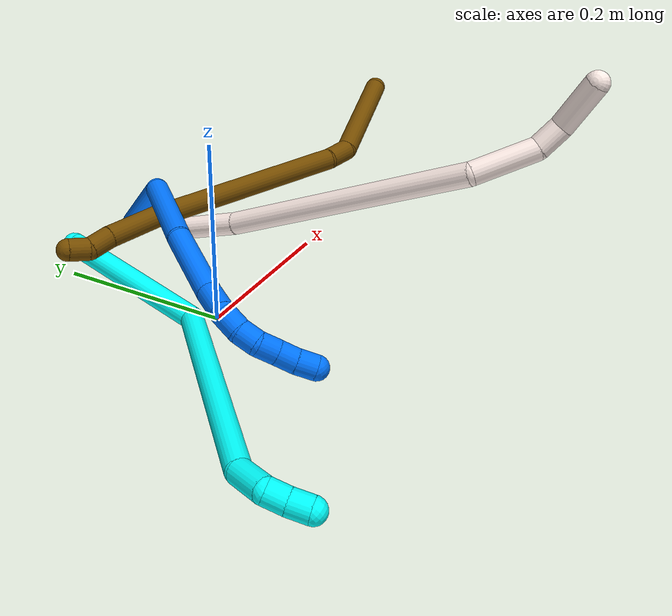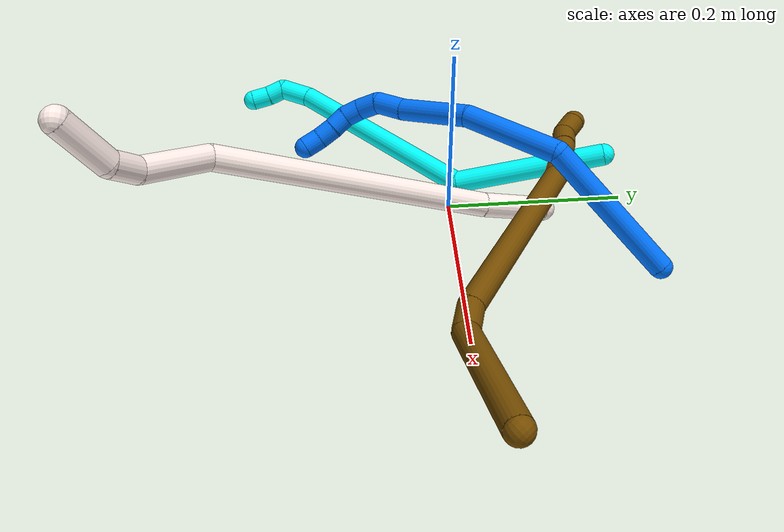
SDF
<sdf version="1.7">
 <world name="default">
  <model name="photoneo_s_sensor">
   <static>1</static>
   <pose>0 0 2 1.57079 1.57079 3.14159</pose>
   <link name="link">
    <inertial><mass>0.1</mass></inertial>
    <sensor name="sensor" type="depth">
     <update_rate>30</update_rate>
     <camera>
      <horizontal_fov>1.22</horizontal_fov>
      <image><width>1920</width><height>1200</height><format>B8G8R8</format></image>
      <clip><near>0.1</near><far>4</far></clip>
      <depth_camera><output>points</output></depth_camera>
     </camera>
     <plugin name="camera_plugin" filename="libgazebo_ros_depth_camera.so">
      <baseline>0.2</baseline>
      <alwaysOn>1</alwaysOn>
      <updateRate>0.0</updateRate>
      <cameraName>camera_ir</cameraName>
      <imageTopicName>/camera/color/image_raw</imageTopicName>
      <cameraInfoTopicName>/camera/color/camera_info</cameraInfoTopicName>
      <depthImageTopicName>/camera/depth/image_raw</depthImageTopicName>
      <depthImageCameraInfoTopicName>/camera/depth/camera_info</depthImageCameraInfoTopicName>
      <pointCloudTopicName>/camera/depth/points</pointCloudTopicName>
      <frameName>fr_optical</frameName>
      <pointCloudCutoff>0.1</pointCloudCutoff>
      <pointCloudCutoffMax>2.0</pointCloudCutoffMax>
      <distortionK1>0</distortionK1>
      <distortionK2>0</distortionK2>
      <distortionK3>0</distortionK3>
      <distortionT1>0</distortionT1>
      <distortionT2>0</distortionT2>
      <CxPrime>0</CxPrime>
      <Cx>0</Cx>
      <Cy>0</Cy>
      <focalLength>0</focalLength>
      <hackBaseline>0</hackBaseline>
     </plugin>
    </sensor>
   </link>
  </model>
  <model name="bin">
   <static>1</static>
   <link name="bottom">
    <collision name="collision-bottom">
     <pose>0 0 -0.01 0 -0 0</pose>
     <geometry><box><size>0.8 0.6 0.02</size></box></geometry>
     <surface>
      <friction><ode><mu>100</mu><mu2>100</mu2></ode></friction>
      <contact><collide_bitmask>65535</collide_bitmask></contact>
     </surface>
    </collision>
   </link>
   <link name="west_wall">
    <collision name="collision-west_wall">
     <pose>-0.41 0 0.1 0 -0 0</pose>
     <geometry><box><size>0.02 0.6 0.2</size></box></geometry>
     <surface>
      <friction><ode><mu>100</mu><mu2>100</mu2></ode></friction>
      <contact><collide_bitmask>65535</collide_bitmask></contact>
     </surface>
    </collision>
   </link>
   <link name="east_wall">
    <collision name="collision-east_wall">
     <pose>0.41 0 0.1 0 -0 0</pose>
     <geometry><box><size>0.02 0.6 0.2</size></box></geometry>
     <surface>
      <friction><ode><mu>100</mu><mu2>100</mu2></ode></friction>
      <contact><collide_bitmask>65535</collide_bitmask></contact>
     </surface>
    </collision>
   </link>
   <link name="south_wall">
    <collision name="collision-south_wall">
     <pose>0 -0.31 0.1 0 -0 0</pose>
     <geometry><box><size>0.8 0.02 0.2</size></box></geometry>
     <surface>
      <friction><ode><mu>100</mu><mu2>100</mu2></ode></friction>
      <contact><collide_bitmask>65535</collide_bitmask></contact>
     </surface>
    </collision>
   </link>
   <link name="north_wall">
    <collision name="collision-north_wall">
     <pose>0 0.31 0.1 0 -0 0</pose>
     <geometry><box><size>0.8 0.02 0.2</size></box></geometry>
     <surface>
      <friction><ode><mu>100</mu><mu2>100</mu2></ode></friction>
      <contact><collide_bitmask>65535</collide_bitmask></contact>
     </surface>
    </collision>
   </link>
  </model>
  <model name="3">
   <static>0</static>
   <link name="3">
    <collision name="collision-cylinder-e_1_1_4">
     <pose>-0.011052 -0.051392 -0.067152 2.48837 -0.129967 -0.379591</pose>
     <geometry><cylinder><radius>0.0125</radius><length>0.170561</length></cylinder></geometry>
     <surface>
      <friction><ode><mu>1.16</mu><mu2>1.16</mu2><slip1>0</slip1><slip2>0</slip2></ode></friction>
      <contact><ode><kp>1e+06</kp><kd>1</kd><max_vel>0</max_vel><min_depth>0.001</min_depth></ode></contact>
     </surface>
    </collision>
    <visual name="visual-cylinder-e_1_1_4">
     <pose>-0.011052 -0.051392 -0.067152 2.48837 -0.129967 -0.379591</pose>
     <geometry><cylinder><radius>0.0125</radius><length>0.170561</length></cylinder></geometry>
     <material><ambient>0.003922 1 0.996078 1</ambient></material>
    </visual>
    <collision name="collision-cylinder-e_2_4_5">
     <pose>-0.108221 -0.18658 -0.170267 1.97619 -0.756805 -1.08561</pose>
     <geometry><cylinder><radius>0.0125</radius><length>0.250846</length></cylinder></geometry>
     <surface>
      <friction><ode><mu>1.16</mu><mu2>1.16</mu2><slip1>0</slip1><slip2>0</slip2></ode></friction>
      <contact><ode><kp>1e+06</kp><kd>1</kd><max_vel>0</max_vel><min_depth>0.001</min_depth></ode></contact>
     </surface>
    </collision>
    <visual name="visual-cylinder-e_2_4_5">
     <pose>-0.108221 -0.18658 -0.170267 1.97619 -0.756805 -1.08561</pose>
     <geometry><cylinder><radius>0.0125</radius><length>0.250846</length></cylinder></geometry>
     <material><ambient>0.003922 1 0.996078 1</ambient></material>
    </visual>
    <collision name="collision-cylinder-e_3_5_6">
     <pose>-0.200299 -0.285944 -0.213935 2.03038 -0.33067 -0.525111</pose>
     <geometry><cylinder><radius>0.0125</radius><length>0.036733</length></cylinder></geometry>
     <surface>
      <friction><ode><mu>1.16</mu><mu2>1.16</mu2><slip1>0</slip1><slip2>0</slip2></ode></friction>
      <contact><ode><kp>1e+06</kp><kd>1</kd><max_vel>0</max_vel><min_depth>0.001</min_depth></ode></contact>
     </surface>
    </collision>
    <visual name="visual-cylinder-e_3_5_6">
     <pose>-0.200299 -0.285944 -0.213935 2.03038 -0.33067 -0.525111</pose>
     <geometry><cylinder><radius>0.0125</radius><length>0.036733</length></cylinder></geometry>
     <material><ambient>0.003922 1 0.996078 1</ambient></material>
    </visual>
    <collision name="collision-cylinder-e_4_6_7">
     <pose>-0.204968 -0.306373 -0.230615 2.64527 0.126129 0.48849</pose>
     <geometry><cylinder><radius>0.0125</radius><length>0.020575</length></cylinder></geometry>
     <surface>
      <friction><ode><mu>1.16</mu><mu2>1.16</mu2><slip1>0</slip1><slip2>0</slip2></ode></friction>
      <contact><ode><kp>1e+06</kp><kd>1</kd><max_vel>0</max_vel><min_depth>0.001</min_depth></ode></contact>
     </surface>
    </collision>
    <visual name="visual-cylinder-e_4_6_7">
     <pose>-0.204968 -0.306373 -0.230615 2.64527 0.126129 0.48849</pose>
     <geometry><cylinder><radius>0.0125</radius><length>0.020575</length></cylinder></geometry>
     <material><ambient>0.003922 1 0.996078 1</ambient></material>
    </visual>
    <collision name="collision-cylinder-e_5_7_2">
     <pose>-0.202189 -0.317778 -0.247849 2.47153 0.139979 0.397405</pose>
     <geometry><cylinder><radius>0.0125</radius><length>0.021286</length></cylinder></geometry>
     <surface>
      <friction><ode><mu>1.16</mu><mu2>1.16</mu2><slip1>0</slip1><slip2>0</slip2></ode></friction>
      <contact><ode><kp>1e+06</kp><kd>1</kd><max_vel>0</max_vel><min_depth>0.001</min_depth></ode></contact>
     </surface>
    </collision>
    <visual name="visual-cylinder-e_5_7_2">
     <pose>-0.202189 -0.317778 -0.247849 2.47153 0.139979 0.397405</pose>
     <geometry><cylinder><radius>0.0125</radius><length>0.021286</length></cylinder></geometry>
     <material><ambient>0.003922 1 0.996078 1</ambient></material>
    </visual>
    <collision name="collision-sphere-2">
     <pose>-0.200704 -0.324323 -0.25611 0 -0 0</pose>
     <geometry><sphere><radius>0.0125</radius></sphere></geometry>
     <surface>
      <friction><ode><mu>1.16</mu><mu2>1.16</mu2><slip1>0</slip1><slip2>0</slip2></ode></friction>
      <contact><ode><kp>1e+06</kp><kd>1</kd><max_vel>0</max_vel><min_depth>0.001</min_depth></ode></contact>
     </surface>
    </collision>
    <visual name="visual-sphere-2">
     <pose>-0.200704 -0.324323 -0.25611 0 -0 0</pose>
     <geometry><sphere><radius>0.0125</radius></sphere></geometry>
     <material><ambient>0.003922 1 0.996078 1</ambient></material>
    </visual>
    <collision name="collision-sphere-7">
     <pose>-0.203674 -0.311232 -0.239589 0 -0 0</pose>
     <geometry><sphere><radius>0.0125</radius></sphere></geometry>
     <surface>
      <friction><ode><mu>1.16</mu><mu2>1.16</mu2><slip1>0</slip1><slip2>0</slip2></ode></friction>
      <contact><ode><kp>1e+06</kp><kd>1</kd><max_vel>0</max_vel><min_depth>0.001</min_depth></ode></contact>
     </surface>
    </collision>
    <visual name="visual-sphere-7">
     <pose>-0.203674 -0.311232 -0.239589 0 -0 0</pose>
     <geometry><sphere><radius>0.0125</radius></sphere></geometry>
     <material><ambient>0.003922 1 0.996078 1</ambient></material>
    </visual>
    <collision name="collision-sphere-6">
     <pose>-0.206263 -0.301513 -0.221641 0 -0 0</pose>
     <geometry><sphere><radius>0.0125</radius></sphere></geometry>
     <surface>
      <friction><ode><mu>1.16</mu><mu2>1.16</mu2><slip1>0</slip1><slip2>0</slip2></ode></friction>
      <contact><ode><kp>1e+06</kp><kd>1</kd><max_vel>0</max_vel><min_depth>0.001</min_depth></ode></contact>
     </surface>
    </collision>
    <visual name="visual-sphere-6">
     <pose>-0.206263 -0.301513 -0.221641 0 -0 0</pose>
     <geometry><sphere><radius>0.0125</radius></sphere></geometry>
     <material><ambient>0.003922 1 0.996078 1</ambient></material>
    </visual>
    <collision name="collision-sphere-5">
     <pose>-0.194336 -0.270375 -0.20623 0 -0 0</pose>
     <geometry><sphere><radius>0.0125</radius></sphere></geometry>
     <surface>
      <friction><ode><mu>1.16</mu><mu2>1.16</mu2><slip1>0</slip1><slip2>0</slip2></ode></friction>
      <contact><ode><kp>1e+06</kp><kd>1</kd><max_vel>0</max_vel><min_depth>0.001</min_depth></ode></contact>
     </surface>
    </collision>
    <visual name="visual-sphere-5">
     <pose>-0.194336 -0.270375 -0.20623 0 -0 0</pose>
     <geometry><sphere><radius>0.0125</radius></sphere></geometry>
     <material><ambient>0.003922 1 0.996078 1</ambient></material>
    </visual>
    <collision name="collision-sphere-1">
     <geometry><sphere><radius>0.0125</radius></sphere></geometry>
     <surface>
      <friction><ode><mu>1.16</mu><mu2>1.16</mu2><slip1>0</slip1><slip2>0</slip2></ode></friction>
      <contact><ode><kp>1e+06</kp><kd>1</kd><max_vel>0</max_vel><min_depth>0.001</min_depth></ode></contact>
     </surface>
    </collision>
    <visual name="visual-sphere-1">
     <geometry><sphere><radius>0.0125</radius></sphere></geometry>
     <material><ambient>0.003922 1 0.996078 1</ambient></material>
    </visual>
    <collision name="collision-sphere-4">
     <pose>-0.022105 -0.102784 -0.134305 0 -0 0</pose>
     <geometry><sphere><radius>0.0125</radius></sphere></geometry>
     <surface>
      <friction><ode><mu>1.16</mu><mu2>1.16</mu2><slip1>0</slip1><slip2>0</slip2></ode></friction>
      <contact><ode><kp>1e+06</kp><kd>1</kd><max_vel>0</max_vel><min_depth>0.001</min_depth></ode></contact>
     </surface>
    </collision>
    <visual name="visual-sphere-4">
     <pose>-0.022105 -0.102784 -0.134305 0 -0 0</pose>
     <geometry><sphere><radius>0.0125</radius></sphere></geometry>
     <material><ambient>0.003922 1 0.996078 1</ambient></material>
    </visual>
    <inertial>
     <pose>-0.089821 -0.158279 -0.144087 0 -0 0</pose>
     <mass>0.5</mass>
     <inertia>
      <ixx>-0.00018</ixx>
      <ixy>0</ixy>
      <ixz>0</ixz>
      <iyy>-0.000839</iyy>
      <iyz>0</iyz>
      <izz>0.002091</izz>
     </inertia>
    </inertial>
   </link>
   <pose>-0.016059 0.177548 0.052745 -0.703396 -0.278343 -0.003973</pose>
  </model>
  <model name="11">
   <static>0</static>
   <link name="11">
    <collision name="collision-cylinder-e_1_1_4">
     <pose>-0.00029 -0.033699 0.001922 1.51383 -0.008604 -0.008128</pose>
     <geometry><cylinder><radius>0.0125</radius><length>0.06751</length></cylinder></geometry>
     <surface>
      <friction><ode><mu>1.16</mu><mu2>1.16</mu2><slip1>0</slip1><slip2>0</slip2></ode></friction>
      <contact><ode><kp>1e+06</kp><kd>1</kd><max_vel>0</max_vel><min_depth>0.001</min_depth></ode></contact>
     </surface>
    </collision>
    <visual name="visual-cylinder-e_1_1_4">
     <pose>-0.00029 -0.033699 0.001922 1.51383 -0.008604 -0.008128</pose>
     <geometry><cylinder><radius>0.0125</radius><length>0.06751</length></cylinder></geometry>
     <material><ambient>1 0.933333 0.909804 1</ambient></material>
    </visual>
    <collision name="collision-cylinder-e_2_4_5">
     <pose>-0.014912 -0.205919 0.003622 1.5724 -0.103092 -0.103257</pose>
     <geometry><cylinder><radius>0.0125</radius><length>0.278521</length></cylinder></geometry>
     <surface>
      <friction><ode><mu>1.16</mu><mu2>1.16</mu2><slip1>0</slip1><slip2>0</slip2></ode></friction>
      <contact><ode><kp>1e+06</kp><kd>1</kd><max_vel>0</max_vel><min_depth>0.001</min_depth></ode></contact>
     </surface>
    </collision>
    <visual name="visual-cylinder-e_2_4_5">
     <pose>-0.014912 -0.205919 0.003622 1.5724 -0.103092 -0.103257</pose>
     <geometry><cylinder><radius>0.0125</radius><length>0.278521</length></cylinder></geometry>
     <material><ambient>1 0.933333 0.909804 1</ambient></material>
    </visual>
    <collision name="collision-cylinder-e_3_5_6">
     <pose>-0.039573 -0.373736 0.019117 1.0784 -0.301259 -0.181136</pose>
     <geometry><cylinder><radius>0.0125</radius><length>0.069627</length></cylinder></geometry>
     <surface>
      <friction><ode><mu>1.16</mu><mu2>1.16</mu2><slip1>0</slip1><slip2>0</slip2></ode></friction>
      <contact><ode><kp>1e+06</kp><kd>1</kd><max_vel>0</max_vel><min_depth>0.001</min_depth></ode></contact>
     </surface>
    </collision>
    <visual name="visual-cylinder-e_3_5_6">
     <pose>-0.039573 -0.373736 0.019117 1.0784 -0.301259 -0.181136</pose>
     <geometry><cylinder><radius>0.0125</radius><length>0.069627</length></cylinder></geometry>
     <material><ambient>1 0.933333 0.909804 1</ambient></material>
    </visual>
    <collision name="collision-cylinder-e_4_6_7">
     <pose>-0.059438 -0.414318 0.038089 1.28991 -0.681864 -0.521634</pose>
     <geometry><cylinder><radius>0.0125</radius><length>0.030257</length></cylinder></geometry>
     <surface>
      <friction><ode><mu>1.16</mu><mu2>1.16</mu2><slip1>0</slip1><slip2>0</slip2></ode></friction>
      <contact><ode><kp>1e+06</kp><kd>1</kd><max_vel>0</max_vel><min_depth>0.001</min_depth></ode></contact>
     </surface>
    </collision>
    <visual name="visual-cylinder-e_4_6_7">
     <pose>-0.059438 -0.414318 0.038089 1.28991 -0.681864 -0.521634</pose>
     <geometry><cylinder><radius>0.0125</radius><length>0.030257</length></cylinder></geometry>
     <material><ambient>1 0.933333 0.909804 1</ambient></material>
    </visual>
    <collision name="collision-cylinder-e_5_7_2">
     <pose>-0.086392 -0.44512 0.034491 1.90852 -0.699905 -0.951147</pose>
     <geometry><cylinder><radius>0.0125</radius><length>0.054085</length></cylinder></geometry>
     <surface>
      <friction><ode><mu>1.16</mu><mu2>1.16</mu2><slip1>0</slip1><slip2>0</slip2></ode></friction>
      <contact><ode><kp>1e+06</kp><kd>1</kd><max_vel>0</max_vel><min_depth>0.001</min_depth></ode></contact>
     </surface>
    </collision>
    <visual name="visual-cylinder-e_5_7_2">
     <pose>-0.086392 -0.44512 0.034491 1.90852 -0.699905 -0.951147</pose>
     <geometry><cylinder><radius>0.0125</radius><length>0.054085</length></cylinder></geometry>
     <material><ambient>1 0.933333 0.909804 1</ambient></material>
    </visual>
    <collision name="collision-sphere-2">
     <pose>-0.103811 -0.464636 0.027638 0 -0 0</pose>
     <geometry><sphere><radius>0.0125</radius></sphere></geometry>
     <surface>
      <friction><ode><mu>1.16</mu><mu2>1.16</mu2><slip1>0</slip1><slip2>0</slip2></ode></friction>
      <contact><ode><kp>1e+06</kp><kd>1</kd><max_vel>0</max_vel><min_depth>0.001</min_depth></ode></contact>
     </surface>
    </collision>
    <visual name="visual-sphere-2">
     <pose>-0.103811 -0.464636 0.027638 0 -0 0</pose>
     <geometry><sphere><radius>0.0125</radius></sphere></geometry>
     <material><ambient>1 0.933333 0.909804 1</ambient></material>
    </visual>
    <collision name="collision-sphere-7">
     <pose>-0.068972 -0.425603 0.041345 0 -0 0</pose>
     <geometry><sphere><radius>0.0125</radius></sphere></geometry>
     <surface>
      <friction><ode><mu>1.16</mu><mu2>1.16</mu2><slip1>0</slip1><slip2>0</slip2></ode></friction>
      <contact><ode><kp>1e+06</kp><kd>1</kd><max_vel>0</max_vel><min_depth>0.001</min_depth></ode></contact>
     </surface>
    </collision>
    <visual name="visual-sphere-7">
     <pose>-0.068972 -0.425603 0.041345 0 -0 0</pose>
     <geometry><sphere><radius>0.0125</radius></sphere></geometry>
     <material><ambient>1 0.933333 0.909804 1</ambient></material>
    </visual>
    <collision name="collision-sphere-6">
     <pose>-0.049903 -0.403033 0.034833 0 -0 0</pose>
     <geometry><sphere><radius>0.0125</radius></sphere></geometry>
     <surface>
      <friction><ode><mu>1.16</mu><mu2>1.16</mu2><slip1>0</slip1><slip2>0</slip2></ode></friction>
      <contact><ode><kp>1e+06</kp><kd>1</kd><max_vel>0</max_vel><min_depth>0.001</min_depth></ode></contact>
     </surface>
    </collision>
    <visual name="visual-sphere-6">
     <pose>-0.049903 -0.403033 0.034833 0 -0 0</pose>
     <geometry><sphere><radius>0.0125</radius></sphere></geometry>
     <material><ambient>1 0.933333 0.909804 1</ambient></material>
    </visual>
    <collision name="collision-sphere-5">
     <pose>-0.029243 -0.34444 0.0034 0 -0 0</pose>
     <geometry><sphere><radius>0.0125</radius></sphere></geometry>
     <surface>
      <friction><ode><mu>1.16</mu><mu2>1.16</mu2><slip1>0</slip1><slip2>0</slip2></ode></friction>
      <contact><ode><kp>1e+06</kp><kd>1</kd><max_vel>0</max_vel><min_depth>0.001</min_depth></ode></contact>
     </surface>
    </collision>
    <visual name="visual-sphere-5">
     <pose>-0.029243 -0.34444 0.0034 0 -0 0</pose>
     <geometry><sphere><radius>0.0125</radius></sphere></geometry>
     <material><ambient>1 0.933333 0.909804 1</ambient></material>
    </visual>
    <collision name="collision-sphere-1">
     <geometry><sphere><radius>0.0125</radius></sphere></geometry>
     <surface>
      <friction><ode><mu>1.16</mu><mu2>1.16</mu2><slip1>0</slip1><slip2>0</slip2></ode></friction>
      <contact><ode><kp>1e+06</kp><kd>1</kd><max_vel>0</max_vel><min_depth>0.001</min_depth></ode></contact>
     </surface>
    </collision>
    <visual name="visual-sphere-1">
     <geometry><sphere><radius>0.0125</radius></sphere></geometry>
     <material><ambient>1 0.933333 0.909804 1</ambient></material>
    </visual>
    <collision name="collision-sphere-4">
     <pose>-0.000581 -0.067398 0.003843 0 -0 0</pose>
     <geometry><sphere><radius>0.0125</radius></sphere></geometry>
     <surface>
      <friction><ode><mu>1.16</mu><mu2>1.16</mu2><slip1>0</slip1><slip2>0</slip2></ode></friction>
      <contact><ode><kp>1e+06</kp><kd>1</kd><max_vel>0</max_vel><min_depth>0.001</min_depth></ode></contact>
     </surface>
    </collision>
    <visual name="visual-sphere-4">
     <pose>-0.000581 -0.067398 0.003843 0 -0 0</pose>
     <geometry><sphere><radius>0.0125</radius></sphere></geometry>
     <material><ambient>1 0.933333 0.909804 1</ambient></material>
    </visual>
    <inertial>
     <pose>-0.026798 -0.24452 0.010975 0 -0 0</pose>
     <mass>0.5</mass>
     <inertia>
      <ixx>0.001648</ixx>
      <ixy>0</ixy>
      <ixz>0</ixz>
      <iyy>-0.000198</iyy>
      <iyz>0</iyz>
      <izz>0.00208</izz>
     </inertia>
    </inertial>
   </link>
   <pose>0.071332 0.089706 0.055661 -2.51625 1.0691 -2.50296</pose>
  </model>
  <model name="12">
   <static>0</static>
   <link name="12">
    <collision name="collision-cylinder-e_1_1_4">
     <pose>-0.049688 -0.005847 0.040937 0.141878 -0.876701 -0.066595</pose>
     <geometry><cylinder><radius>0.0125</radius><length>0.129288</length></cylinder></geometry>
     <surface>
      <friction><ode><mu>1.16</mu><mu2>1.16</mu2><slip1>0</slip1><slip2>0</slip2></ode></friction>
      <contact><ode><kp>1e+06</kp><kd>1</kd><max_vel>0</max_vel><min_depth>0.001</min_depth></ode></contact>
     </surface>
    </collision>
    <visual name="visual-cylinder-e_1_1_4">
     <pose>-0.049688 -0.005847 0.040937 0.141878 -0.876701 -0.066595</pose>
     <geometry><cylinder><radius>0.0125</radius><length>0.129288</length></cylinder></geometry>
     <material><ambient>0.466667 0.301961 0 1</ambient></material>
    </visual>
    <collision name="collision-cylinder-e_2_4_5">
     <pose>-0.111972 -0.006084 0.089374 -0.642273 -0.931403 0.331297</pose>
     <geometry><cylinder><radius>0.0125</radius><length>0.031395</length></cylinder></geometry>
     <surface>
      <friction><ode><mu>1.16</mu><mu2>1.16</mu2><slip1>0</slip1><slip2>0</slip2></ode></friction>
      <contact><ode><kp>1e+06</kp><kd>1</kd><max_vel>0</max_vel><min_depth>0.001</min_depth></ode></contact>
     </surface>
    </collision>
    <visual name="visual-cylinder-e_2_4_5">
     <pose>-0.111972 -0.006084 0.089374 -0.642273 -0.931403 0.331297</pose>
     <geometry><cylinder><radius>0.0125</radius><length>0.031395</length></cylinder></geometry>
     <material><ambient>0.466667 0.301961 0 1</ambient></material>
    </visual>
    <collision name="collision-cylinder-e_3_5_6">
     <pose>-0.219494 0.055601 0.123965 -1.12073 -0.990189 0.65332</pose>
     <geometry><cylinder><radius>0.0125</radius><length>0.22706</length></cylinder></geometry>
     <surface>
      <friction><ode><mu>1.16</mu><mu2>1.16</mu2><slip1>0</slip1><slip2>0</slip2></ode></friction>
      <contact><ode><kp>1e+06</kp><kd>1</kd><max_vel>0</max_vel><min_depth>0.001</min_depth></ode></contact>
     </surface>
    </collision>
    <visual name="visual-cylinder-e_3_5_6">
     <pose>-0.219494 0.055601 0.123965 -1.12073 -0.990189 0.65332</pose>
     <geometry><cylinder><radius>0.0125</radius><length>0.22706</length></cylinder></geometry>
     <material><ambient>0.466667 0.301961 0 1</ambient></material>
    </visual>
    <collision name="collision-cylinder-e_4_6_7">
     <pose>-0.339632 0.124367 0.163778 -0.784244 -0.951541 0.419869</pose>
     <geometry><cylinder><radius>0.0125</radius><length>0.061923</length></cylinder></geometry>
     <surface>
      <friction><ode><mu>1.16</mu><mu2>1.16</mu2><slip1>0</slip1><slip2>0</slip2></ode></friction>
      <contact><ode><kp>1e+06</kp><kd>1</kd><max_vel>0</max_vel><min_depth>0.001</min_depth></ode></contact>
     </surface>
    </collision>
    <visual name="visual-cylinder-e_4_6_7">
     <pose>-0.339632 0.124367 0.163778 -0.784244 -0.951541 0.419869</pose>
     <geometry><cylinder><radius>0.0125</radius><length>0.061923</length></cylinder></geometry>
     <material><ambient>0.466667 0.301961 0 1</ambient></material>
    </visual>
    <collision name="collision-cylinder-e_5_7_8">
     <pose>-0.376076 0.140946 0.182991 -0.539475 -0.978025 0.292141</pose>
     <geometry><cylinder><radius>0.0125</radius><length>0.027083</length></cylinder></geometry>
     <surface>
      <friction><ode><mu>1.16</mu><mu2>1.16</mu2><slip1>0</slip1><slip2>0</slip2></ode></friction>
      <contact><ode><kp>1e+06</kp><kd>1</kd><max_vel>0</max_vel><min_depth>0.001</min_depth></ode></contact>
     </surface>
    </collision>
    <visual name="visual-cylinder-e_5_7_8">
     <pose>-0.376076 0.140946 0.182991 -0.539475 -0.978025 0.292141</pose>
     <geometry><cylinder><radius>0.0125</radius><length>0.027083</length></cylinder></geometry>
     <material><ambient>0.466667 0.301961 0 1</ambient></material>
    </visual>
    <collision name="collision-cylinder-e_6_8_2">
     <pose>-0.395073 0.15317 0.191789 -1.30088 -0.731467 0.567087</pose>
     <geometry><cylinder><radius>0.0125</radius><length>0.02325</length></cylinder></geometry>
     <surface>
      <friction><ode><mu>1.16</mu><mu2>1.16</mu2><slip1>0</slip1><slip2>0</slip2></ode></friction>
      <contact><ode><kp>1e+06</kp><kd>1</kd><max_vel>0</max_vel><min_depth>0.001</min_depth></ode></contact>
     </surface>
    </collision>
    <visual name="visual-cylinder-e_6_8_2">
     <pose>-0.395073 0.15317 0.191789 -1.30088 -0.731467 0.567087</pose>
     <geometry><cylinder><radius>0.0125</radius><length>0.02325</length></cylinder></geometry>
     <material><ambient>0.466667 0.301961 0 1</ambient></material>
    </visual>
    <collision name="collision-sphere-2">
     <pose>-0.402838 0.161508 0.194096 0 -0 0</pose>
     <geometry><sphere><radius>0.0125</radius></sphere></geometry>
     <surface>
      <friction><ode><mu>1.16</mu><mu2>1.16</mu2><slip1>0</slip1><slip2>0</slip2></ode></friction>
      <contact><ode><kp>1e+06</kp><kd>1</kd><max_vel>0</max_vel><min_depth>0.001</min_depth></ode></contact>
     </surface>
    </collision>
    <visual name="visual-sphere-2">
     <pose>-0.402838 0.161508 0.194096 0 -0 0</pose>
     <geometry><sphere><radius>0.0125</radius></sphere></geometry>
     <material><ambient>0.466667 0.301961 0 1</ambient></material>
    </visual>
    <collision name="collision-sphere-4">
     <pose>-0.099375 -0.011695 0.081874 0 -0 0</pose>
     <geometry><sphere><radius>0.0125</radius></sphere></geometry>
     <surface>
      <friction><ode><mu>1.16</mu><mu2>1.16</mu2><slip1>0</slip1><slip2>0</slip2></ode></friction>
      <contact><ode><kp>1e+06</kp><kd>1</kd><max_vel>0</max_vel><min_depth>0.001</min_depth></ode></contact>
     </surface>
    </collision>
    <visual name="visual-sphere-4">
     <pose>-0.099375 -0.011695 0.081874 0 -0 0</pose>
     <geometry><sphere><radius>0.0125</radius></sphere></geometry>
     <material><ambient>0.466667 0.301961 0 1</ambient></material>
    </visual>
    <collision name="collision-sphere-1">
     <geometry><sphere><radius>0.0125</radius></sphere></geometry>
     <surface>
      <friction><ode><mu>1.16</mu><mu2>1.16</mu2><slip1>0</slip1><slip2>0</slip2></ode></friction>
      <contact><ode><kp>1e+06</kp><kd>1</kd><max_vel>0</max_vel><min_depth>0.001</min_depth></ode></contact>
     </surface>
    </collision>
    <visual name="visual-sphere-1">
     <geometry><sphere><radius>0.0125</radius></sphere></geometry>
     <material><ambient>0.466667 0.301961 0 1</ambient></material>
    </visual>
    <collision name="collision-sphere-8">
     <pose>-0.387308 0.144832 0.189482 0 -0 0</pose>
     <geometry><sphere><radius>0.0125</radius></sphere></geometry>
     <surface>
      <friction><ode><mu>1.16</mu><mu2>1.16</mu2><slip1>0</slip1><slip2>0</slip2></ode></friction>
      <contact><ode><kp>1e+06</kp><kd>1</kd><max_vel>0</max_vel><min_depth>0.001</min_depth></ode></contact>
     </surface>
    </collision>
    <visual name="visual-sphere-8">
     <pose>-0.387308 0.144832 0.189482 0 -0 0</pose>
     <geometry><sphere><radius>0.0125</radius></sphere></geometry>
     <material><ambient>0.466667 0.301961 0 1</ambient></material>
    </visual>
    <collision name="collision-sphere-5">
     <pose>-0.124568 -0.000473 0.096874 0 -0 0</pose>
     <geometry><sphere><radius>0.0125</radius></sphere></geometry>
     <surface>
      <friction><ode><mu>1.16</mu><mu2>1.16</mu2><slip1>0</slip1><slip2>0</slip2></ode></friction>
      <contact><ode><kp>1e+06</kp><kd>1</kd><max_vel>0</max_vel><min_depth>0.001</min_depth></ode></contact>
     </surface>
    </collision>
    <visual name="visual-sphere-5">
     <pose>-0.124568 -0.000473 0.096874 0 -0 0</pose>
     <geometry><sphere><radius>0.0125</radius></sphere></geometry>
     <material><ambient>0.466667 0.301961 0 1</ambient></material>
    </visual>
    <collision name="collision-sphere-6">
     <pose>-0.31442 0.111674 0.151056 0 -0 0</pose>
     <geometry><sphere><radius>0.0125</radius></sphere></geometry>
     <surface>
      <friction><ode><mu>1.16</mu><mu2>1.16</mu2><slip1>0</slip1><slip2>0</slip2></ode></friction>
      <contact><ode><kp>1e+06</kp><kd>1</kd><max_vel>0</max_vel><min_depth>0.001</min_depth></ode></contact>
     </surface>
    </collision>
    <visual name="visual-sphere-6">
     <pose>-0.31442 0.111674 0.151056 0 -0 0</pose>
     <geometry><sphere><radius>0.0125</radius></sphere></geometry>
     <material><ambient>0.466667 0.301961 0 1</ambient></material>
    </visual>
    <collision name="collision-sphere-7">
     <pose>-0.364845 0.13706 0.1765 0 -0 0</pose>
     <geometry><sphere><radius>0.0125</radius></sphere></geometry>
     <surface>
      <friction><ode><mu>1.16</mu><mu2>1.16</mu2><slip1>0</slip1><slip2>0</slip2></ode></friction>
      <contact><ode><kp>1e+06</kp><kd>1</kd><max_vel>0</max_vel><min_depth>0.001</min_depth></ode></contact>
     </surface>
    </collision>
    <visual name="visual-sphere-7">
     <pose>-0.364845 0.13706 0.1765 0 -0 0</pose>
     <geometry><sphere><radius>0.0125</radius></sphere></geometry>
     <material><ambient>0.466667 0.301961 0 1</ambient></material>
    </visual>
    <inertial>
     <pose>-0.200359 0.053515 0.111606 0 -0 0</pose>
     <mass>0.5</mass>
     <inertia>
      <ixx>0.00086</ixx>
      <ixy>0</ixy>
      <ixz>0</ixz>
      <iyy>0.001342</iyy>
      <iyz>0</iyz>
      <izz>0.000523</izz>
     </inertia>
    </inertial>
   </link>
   <pose>0.388559 0.000544 0.146665 1.09792 -0.686837 -0.536685</pose>
  </model>
  <model name="14">
   <static>0</static>
   <link name="14">
    <collision name="collision-cylinder-e_1_1_4">
     <pose>-0.015679 -0.076134 -0.024379 1.8807 -0.193665 -0.264645</pose>
     <geometry><cylinder><radius>0.0125</radius><length>0.16293</length></cylinder></geometry>
     <surface>
      <friction><ode><mu>1.16</mu><mu2>1.16</mu2><slip1>0</slip1><slip2>0</slip2></ode></friction>
      <contact><ode><kp>1e+06</kp><kd>1</kd><max_vel>0</max_vel><min_depth>0.001</min_depth></ode></contact>
     </surface>
    </collision>
    <visual name="visual-cylinder-e_1_1_4">
     <pose>-0.015679 -0.076134 -0.024379 1.8807 -0.193665 -0.264645</pose>
     <geometry><cylinder><radius>0.0125</radius><length>0.16293</length></cylinder></geometry>
     <material><ambient>0 0.462745 1 1</ambient></material>
    </visual>
    <collision name="collision-cylinder-e_2_4_5">
     <pose>-0.072783 -0.191057 -0.047345 1.53437 -0.817929 -0.791674</pose>
     <geometry><cylinder><radius>0.0125</radius><length>0.113537</length></cylinder></geometry>
     <surface>
      <friction><ode><mu>1.16</mu><mu2>1.16</mu2><slip1>0</slip1><slip2>0</slip2></ode></friction>
      <contact><ode><kp>1e+06</kp><kd>1</kd><max_vel>0</max_vel><min_depth>0.001</min_depth></ode></contact>
     </surface>
    </collision>
    <visual name="visual-cylinder-e_2_4_5">
     <pose>-0.072783 -0.191057 -0.047345 1.53437 -0.817929 -0.791674</pose>
     <geometry><cylinder><radius>0.0125</radius><length>0.113537</length></cylinder></geometry>
     <material><ambient>0 0.462745 1 1</ambient></material>
    </visual>
    <collision name="collision-cylinder-e_3_5_6">
     <pose>-0.151161 -0.250367 -0.046202 1.58394 -1.06383 -1.07536</pose>
     <geometry><cylinder><radius>0.0125</radius><length>0.084538</length></cylinder></geometry>
     <surface>
      <friction><ode><mu>1.16</mu><mu2>1.16</mu2><slip1>0</slip1><slip2>0</slip2></ode></friction>
      <contact><ode><kp>1e+06</kp><kd>1</kd><max_vel>0</max_vel><min_depth>0.001</min_depth></ode></contact>
     </surface>
    </collision>
    <visual name="visual-cylinder-e_3_5_6">
     <pose>-0.151161 -0.250367 -0.046202 1.58394 -1.06383 -1.07536</pose>
     <geometry><cylinder><radius>0.0125</radius><length>0.084538</length></cylinder></geometry>
     <material><ambient>0 0.462745 1 1</ambient></material>
    </visual>
    <collision name="collision-cylinder-e_4_6_7">
     <pose>-0.201701 -0.281475 -0.047675 1.68398 -0.905737 -0.998059</pose>
     <geometry><cylinder><radius>0.0125</radius><length>0.034534</length></cylinder></geometry>
     <surface>
      <friction><ode><mu>1.16</mu><mu2>1.16</mu2><slip1>0</slip1><slip2>0</slip2></ode></friction>
      <contact><ode><kp>1e+06</kp><kd>1</kd><max_vel>0</max_vel><min_depth>0.001</min_depth></ode></contact>
     </surface>
    </collision>
    <visual name="visual-cylinder-e_4_6_7">
     <pose>-0.201701 -0.281475 -0.047675 1.68398 -0.905737 -0.998059</pose>
     <geometry><cylinder><radius>0.0125</radius><length>0.034534</length></cylinder></geometry>
     <material><ambient>0 0.462745 1 1</ambient></material>
    </visual>
    <collision name="collision-cylinder-e_5_7_8">
     <pose>-0.226985 -0.293629 -0.051619 2.62238 -1.30722 -2.47399</pose>
     <geometry><cylinder><radius>0.0125</radius><length>0.024231</length></cylinder></geometry>
     <surface>
      <friction><ode><mu>1.16</mu><mu2>1.16</mu2><slip1>0</slip1><slip2>0</slip2></ode></friction>
      <contact><ode><kp>1e+06</kp><kd>1</kd><max_vel>0</max_vel><min_depth>0.001</min_depth></ode></contact>
     </surface>
    </collision>
    <visual name="visual-cylinder-e_5_7_8">
     <pose>-0.226985 -0.293629 -0.051619 2.62238 -1.30722 -2.47399</pose>
     <geometry><cylinder><radius>0.0125</radius><length>0.024231</length></cylinder></geometry>
     <material><ambient>0 0.462745 1 1</ambient></material>
    </visual>
    <collision name="collision-cylinder-e_6_8_9">
     <pose>-0.247713 -0.294978 -0.058672 -3.09139 -1.12473 3.06196</pose>
     <geometry><cylinder><radius>0.0125</radius><length>0.02002</length></cylinder></geometry>
     <surface>
      <friction><ode><mu>1.16</mu><mu2>1.16</mu2><slip1>0</slip1><slip2>0</slip2></ode></friction>
      <contact><ode><kp>1e+06</kp><kd>1</kd><max_vel>0</max_vel><min_depth>0.001</min_depth></ode></contact>
     </surface>
    </collision>
    <visual name="visual-cylinder-e_6_8_9">
     <pose>-0.247713 -0.294978 -0.058672 -3.09139 -1.12473 3.06196</pose>
     <geometry><cylinder><radius>0.0125</radius><length>0.02002</length></cylinder></geometry>
     <material><ambient>0 0.462745 1 1</ambient></material>
    </visual>
    <collision name="collision-cylinder-e_7_9_10">
     <pose>-0.264138 -0.291243 -0.068805 -2.59786 -0.827253 2.00996</pose>
     <geometry><cylinder><radius>0.0125</radius><length>0.020094</length></cylinder></geometry>
     <surface>
      <friction><ode><mu>1.16</mu><mu2>1.16</mu2><slip1>0</slip1><slip2>0</slip2></ode></friction>
      <contact><ode><kp>1e+06</kp><kd>1</kd><max_vel>0</max_vel><min_depth>0.001</min_depth></ode></contact>
     </surface>
    </collision>
    <visual name="visual-cylinder-e_7_9_10">
     <pose>-0.264138 -0.291243 -0.068805 -2.59786 -0.827253 2.00996</pose>
     <geometry><cylinder><radius>0.0125</radius><length>0.020094</length></cylinder></geometry>
     <material><ambient>0 0.462745 1 1</ambient></material>
    </visual>
    <collision name="collision-cylinder-e_8_10_11">
     <pose>-0.279344 -0.285285 -0.080421 -2.74316 -0.892908 2.34334</pose>
     <geometry><cylinder><radius>0.0125</radius><length>0.020053</length></cylinder></geometry>
     <surface>
      <friction><ode><mu>1.16</mu><mu2>1.16</mu2><slip1>0</slip1><slip2>0</slip2></ode></friction>
      <contact><ode><kp>1e+06</kp><kd>1</kd><max_vel>0</max_vel><min_depth>0.001</min_depth></ode></contact>
     </surface>
    </collision>
    <visual name="visual-cylinder-e_8_10_11">
     <pose>-0.279344 -0.285285 -0.080421 -2.74316 -0.892908 2.34334</pose>
     <geometry><cylinder><radius>0.0125</radius><length>0.020053</length></cylinder></geometry>
     <material><ambient>0 0.462745 1 1</ambient></material>
    </visual>
    <collision name="collision-cylinder-e_9_11_2">
     <pose>-0.294365 -0.281144 -0.092978 -2.8951 -0.802266 2.57326</pose>
     <geometry><cylinder><radius>0.0125</radius><length>0.020062</length></cylinder></geometry>
     <surface>
      <friction><ode><mu>1.16</mu><mu2>1.16</mu2><slip1>0</slip1><slip2>0</slip2></ode></friction>
      <contact><ode><kp>1e+06</kp><kd>1</kd><max_vel>0</max_vel><min_depth>0.001</min_depth></ode></contact>
     </surface>
    </collision>
    <visual name="visual-cylinder-e_9_11_2">
     <pose>-0.294365 -0.281144 -0.092978 -2.8951 -0.802266 2.57326</pose>
     <geometry><cylinder><radius>0.0125</radius><length>0.020062</length></cylinder></geometry>
     <material><ambient>0 0.462745 1 1</ambient></material>
    </visual>
    <collision name="collision-sphere-2">
     <pose>-0.301577 -0.279443 -0.09974 0 -0 0</pose>
     <geometry><sphere><radius>0.0125</radius></sphere></geometry>
     <surface>
      <friction><ode><mu>1.16</mu><mu2>1.16</mu2><slip1>0</slip1><slip2>0</slip2></ode></friction>
      <contact><ode><kp>1e+06</kp><kd>1</kd><max_vel>0</max_vel><min_depth>0.001</min_depth></ode></contact>
     </surface>
    </collision>
    <visual name="visual-sphere-2">
     <pose>-0.301577 -0.279443 -0.09974 0 -0 0</pose>
     <geometry><sphere><radius>0.0125</radius></sphere></geometry>
     <material><ambient>0 0.462745 1 1</ambient></material>
    </visual>
    <collision name="collision-sphere-11">
     <pose>-0.287153 -0.282846 -0.086217 0 -0 0</pose>
     <geometry><sphere><radius>0.0125</radius></sphere></geometry>
     <surface>
      <friction><ode><mu>1.16</mu><mu2>1.16</mu2><slip1>0</slip1><slip2>0</slip2></ode></friction>
      <contact><ode><kp>1e+06</kp><kd>1</kd><max_vel>0</max_vel><min_depth>0.001</min_depth></ode></contact>
     </surface>
    </collision>
    <visual name="visual-sphere-11">
     <pose>-0.287153 -0.282846 -0.086217 0 -0 0</pose>
     <geometry><sphere><radius>0.0125</radius></sphere></geometry>
     <material><ambient>0 0.462745 1 1</ambient></material>
    </visual>
    <collision name="collision-sphere-10">
     <pose>-0.271534 -0.287725 -0.074625 0 -0 0</pose>
     <geometry><sphere><radius>0.0125</radius></sphere></geometry>
     <surface>
      <friction><ode><mu>1.16</mu><mu2>1.16</mu2><slip1>0</slip1><slip2>0</slip2></ode></friction>
      <contact><ode><kp>1e+06</kp><kd>1</kd><max_vel>0</max_vel><min_depth>0.001</min_depth></ode></contact>
     </surface>
    </collision>
    <visual name="visual-sphere-10">
     <pose>-0.271534 -0.287725 -0.074625 0 -0 0</pose>
     <geometry><sphere><radius>0.0125</radius></sphere></geometry>
     <material><ambient>0 0.462745 1 1</ambient></material>
    </visual>
    <collision name="collision-sphere-9">
     <pose>-0.256743 -0.294762 -0.062985 0 -0 0</pose>
     <geometry><sphere><radius>0.0125</radius></sphere></geometry>
     <surface>
      <friction><ode><mu>1.16</mu><mu2>1.16</mu2><slip1>0</slip1><slip2>0</slip2></ode></friction>
      <contact><ode><kp>1e+06</kp><kd>1</kd><max_vel>0</max_vel><min_depth>0.001</min_depth></ode></contact>
     </surface>
    </collision>
    <visual name="visual-sphere-9">
     <pose>-0.256743 -0.294762 -0.062985 0 -0 0</pose>
     <geometry><sphere><radius>0.0125</radius></sphere></geometry>
     <material><ambient>0 0.462745 1 1</ambient></material>
    </visual>
    <collision name="collision-sphere-4">
     <pose>-0.031357 -0.152268 -0.048759 0 -0 0</pose>
     <geometry><sphere><radius>0.0125</radius></sphere></geometry>
     <surface>
      <friction><ode><mu>1.16</mu><mu2>1.16</mu2><slip1>0</slip1><slip2>0</slip2></ode></friction>
      <contact><ode><kp>1e+06</kp><kd>1</kd><max_vel>0</max_vel><min_depth>0.001</min_depth></ode></contact>
     </surface>
    </collision>
    <visual name="visual-sphere-4">
     <pose>-0.031357 -0.152268 -0.048759 0 -0 0</pose>
     <geometry><sphere><radius>0.0125</radius></sphere></geometry>
     <material><ambient>0 0.462745 1 1</ambient></material>
    </visual>
    <collision name="collision-sphere-1">
     <geometry><sphere><radius>0.0125</radius></sphere></geometry>
     <surface>
      <friction><ode><mu>1.16</mu><mu2>1.16</mu2><slip1>0</slip1><slip2>0</slip2></ode></friction>
      <contact><ode><kp>1e+06</kp><kd>1</kd><max_vel>0</max_vel><min_depth>0.001</min_depth></ode></contact>
     </surface>
    </collision>
    <visual name="visual-sphere-1">
     <geometry><sphere><radius>0.0125</radius></sphere></geometry>
     <material><ambient>0 0.462745 1 1</ambient></material>
    </visual>
    <collision name="collision-sphere-8">
     <pose>-0.238682 -0.295195 -0.054359 0 -0 0</pose>
     <geometry><sphere><radius>0.0125</radius></sphere></geometry>
     <surface>
      <friction><ode><mu>1.16</mu><mu2>1.16</mu2><slip1>0</slip1><slip2>0</slip2></ode></friction>
      <contact><ode><kp>1e+06</kp><kd>1</kd><max_vel>0</max_vel><min_depth>0.001</min_depth></ode></contact>
     </surface>
    </collision>
    <visual name="visual-sphere-8">
     <pose>-0.238682 -0.295195 -0.054359 0 -0 0</pose>
     <geometry><sphere><radius>0.0125</radius></sphere></geometry>
     <material><ambient>0 0.462745 1 1</ambient></material>
    </visual>
    <collision name="collision-sphere-5">
     <pose>-0.114209 -0.229846 -0.045932 0 -0 0</pose>
     <geometry><sphere><radius>0.0125</radius></sphere></geometry>
     <surface>
      <friction><ode><mu>1.16</mu><mu2>1.16</mu2><slip1>0</slip1><slip2>0</slip2></ode></friction>
      <contact><ode><kp>1e+06</kp><kd>1</kd><max_vel>0</max_vel><min_depth>0.001</min_depth></ode></contact>
     </surface>
    </collision>
    <visual name="visual-sphere-5">
     <pose>-0.114209 -0.229846 -0.045932 0 -0 0</pose>
     <geometry><sphere><radius>0.0125</radius></sphere></geometry>
     <material><ambient>0 0.462745 1 1</ambient></material>
    </visual>
    <collision name="collision-sphere-6">
     <pose>-0.188114 -0.270888 -0.046471 0 -0 0</pose>
     <geometry><sphere><radius>0.0125</radius></sphere></geometry>
     <surface>
      <friction><ode><mu>1.16</mu><mu2>1.16</mu2><slip1>0</slip1><slip2>0</slip2></ode></friction>
      <contact><ode><kp>1e+06</kp><kd>1</kd><max_vel>0</max_vel><min_depth>0.001</min_depth></ode></contact>
     </surface>
    </collision>
    <visual name="visual-sphere-6">
     <pose>-0.188114 -0.270888 -0.046471 0 -0 0</pose>
     <geometry><sphere><radius>0.0125</radius></sphere></geometry>
     <material><ambient>0 0.462745 1 1</ambient></material>
    </visual>
    <collision name="collision-sphere-7">
     <pose>-0.215288 -0.292063 -0.048878 0 -0 0</pose>
     <geometry><sphere><radius>0.0125</radius></sphere></geometry>
     <surface>
      <friction><ode><mu>1.16</mu><mu2>1.16</mu2><slip1>0</slip1><slip2>0</slip2></ode></friction>
      <contact><ode><kp>1e+06</kp><kd>1</kd><max_vel>0</max_vel><min_depth>0.001</min_depth></ode></contact>
     </surface>
    </collision>
    <visual name="visual-sphere-7">
     <pose>-0.215288 -0.292063 -0.048878 0 -0 0</pose>
     <geometry><sphere><radius>0.0125</radius></sphere></geometry>
     <material><ambient>0 0.462745 1 1</ambient></material>
    </visual>
    <inertial>
     <pose>-0.115673 -0.190433 -0.044372 0 -0 0</pose>
     <mass>0.5</mass>
     <inertia>
      <ixx>0.000216</ixx>
      <ixy>0</ixy>
      <ixz>0</ixz>
      <iyy>-0.000172</iyy>
      <iyz>0</iyz>
      <izz>0.00067</izz>
     </inertia>
    </inertial>
   </link>
   <pose>0.124697 0.209865 0.012525 -2.11122 -0.707814 1.21623</pose>
  </model>
 </world>
</sdf>
